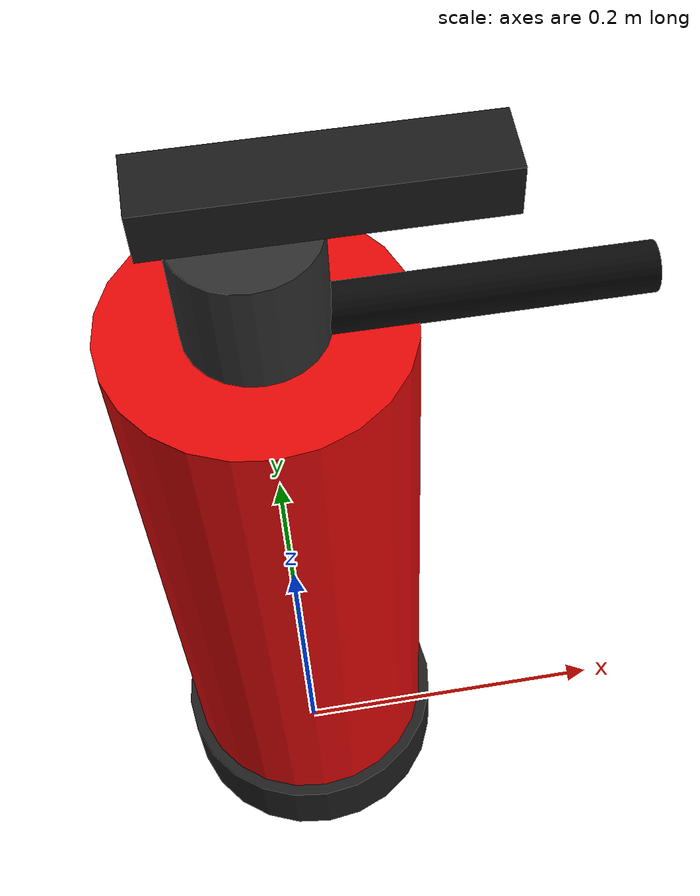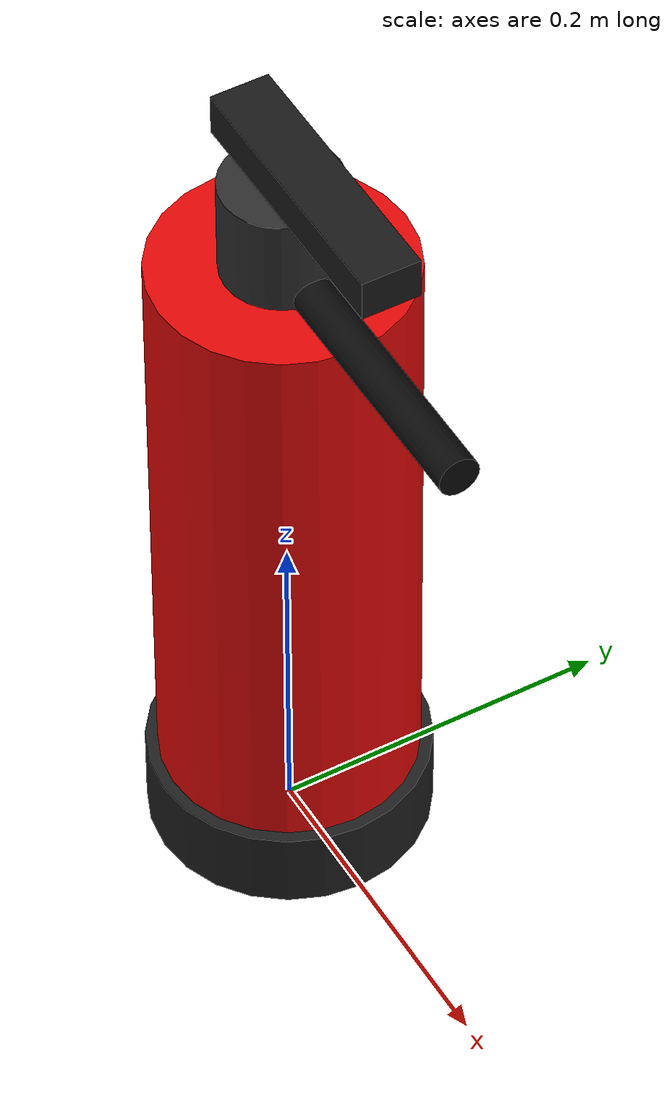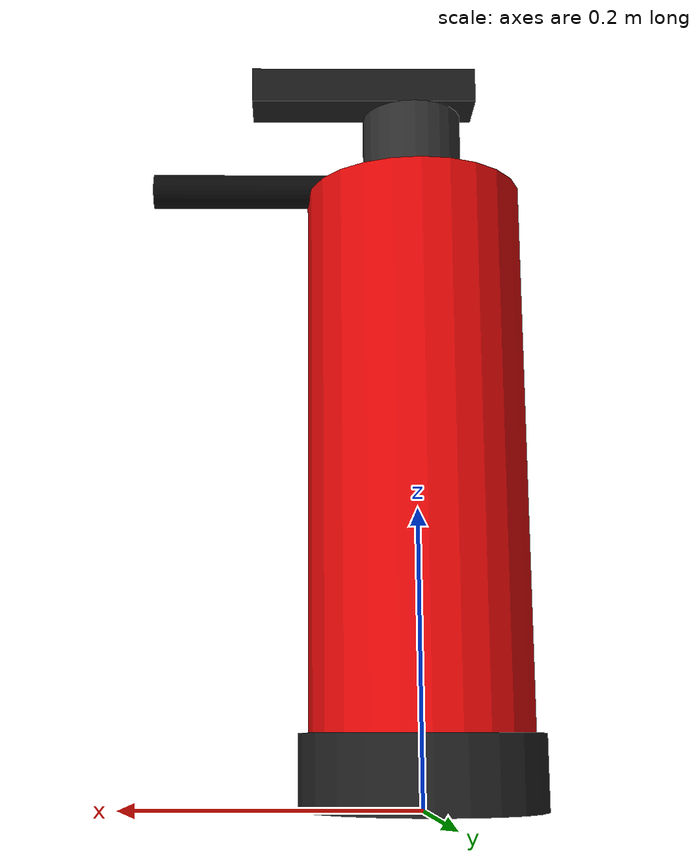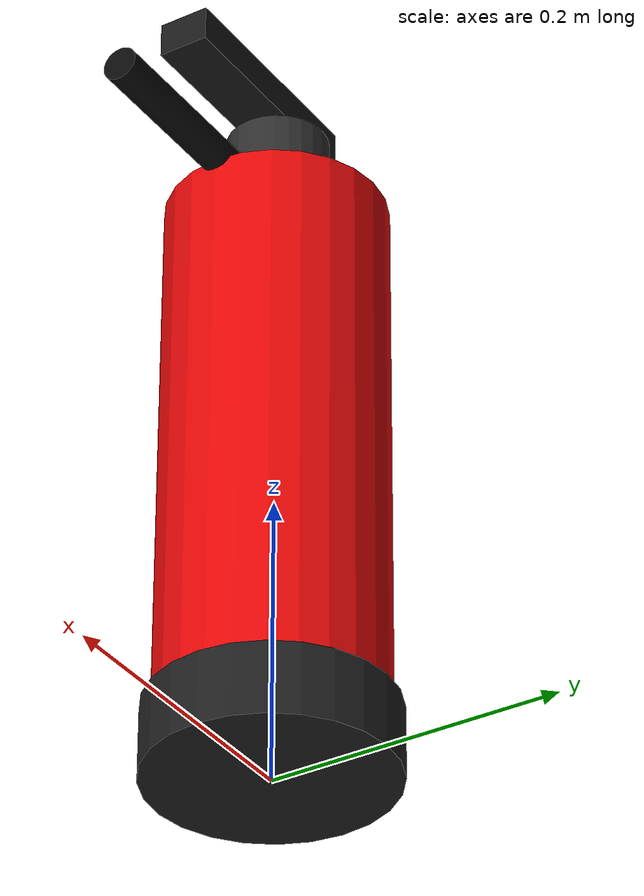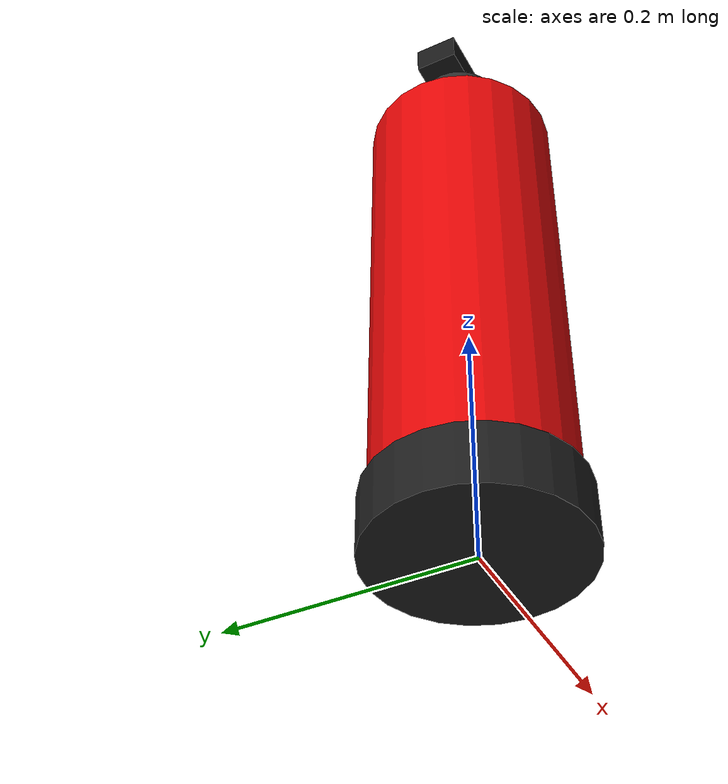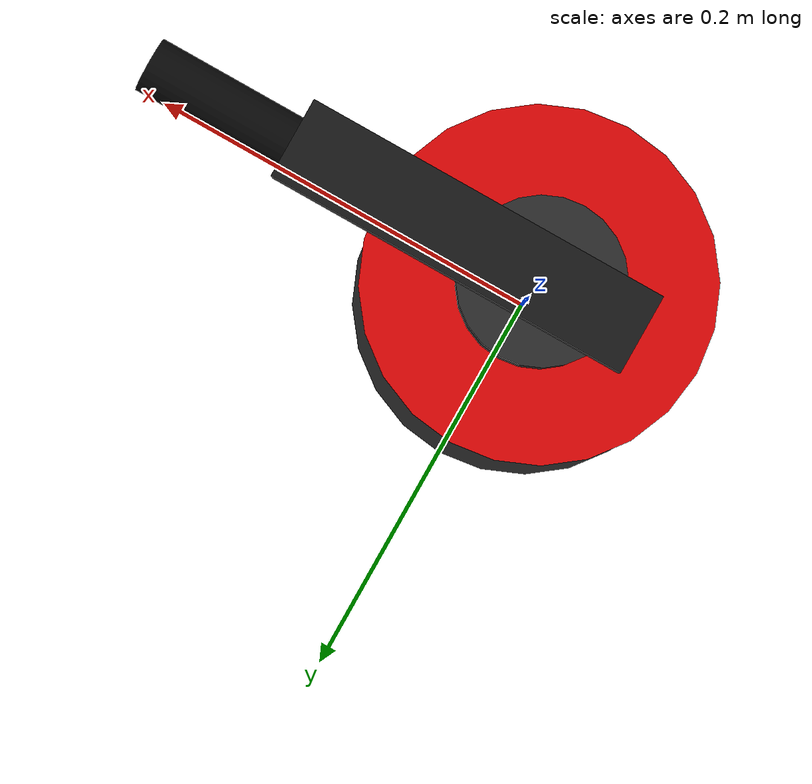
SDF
<?xml version="1.0"?>
<sdf version="1.6">
  <model name="fire_extinguisher">
    <static>true</static>
    <link name="extinguisher">
      <collision name="body_collision">
        <pose>0 0 0.225 0 0 0</pose>
        <geometry>
          <cylinder>
            <radius>0.075</radius>
            <length>0.4</length>
          </cylinder>
        </geometry>
      </collision>
      <visual name="body_visual">
        <pose>0 0 0.225 0 0 0</pose>
        <geometry>
          <cylinder>
            <radius>0.075</radius>
            <length>0.4</length>
          </cylinder>
        </geometry>
        <material>
          <ambient>0.75 0.02 0.02 1</ambient>
          <diffuse>0.9 0.03 0.03 1</diffuse>
        </material>
      </visual>
      <visual name="base_visual">
        <pose>0 0 0.025 0 0 0</pose>
        <geometry>
          <cylinder>
            <radius>0.082</radius>
            <length>0.05</length>
          </cylinder>
        </geometry>
        <material>
          <ambient>0.08 0.08 0.08 1</ambient>
          <diffuse>0.12 0.12 0.12 1</diffuse>
        </material>
      </visual>
      <visual name="neck_visual">
        <pose>0 0 0.455 0 0 0</pose>
        <geometry>
          <cylinder>
            <radius>0.035</radius>
            <length>0.06</length>
          </cylinder>
        </geometry>
        <material>
          <ambient>0.1 0.1 0.1 1</ambient>
          <diffuse>0.18 0.18 0.18 1</diffuse>
        </material>
      </visual>
      <visual name="handle_visual">
        <pose>0.035 0 0.505 0 0 0</pose>
        <geometry>
          <box>
            <size>0.16 0.035 0.025</size>
          </box>
        </geometry>
        <material>
          <ambient>0.05 0.05 0.05 1</ambient>
          <diffuse>0.1 0.1 0.1 1</diffuse>
        </material>
      </visual>
      <visual name="hose_visual">
        <pose>0.105 0 0.43 0 1.5708 0</pose>
        <geometry>
          <cylinder>
            <radius>0.012</radius>
            <length>0.16</length>
          </cylinder>
        </geometry>
        <material>
          <ambient>0.02 0.02 0.02 1</ambient>
          <diffuse>0.04 0.04 0.04 1</diffuse>
        </material>
      </visual>
    </link>
  </model>
</sdf>
